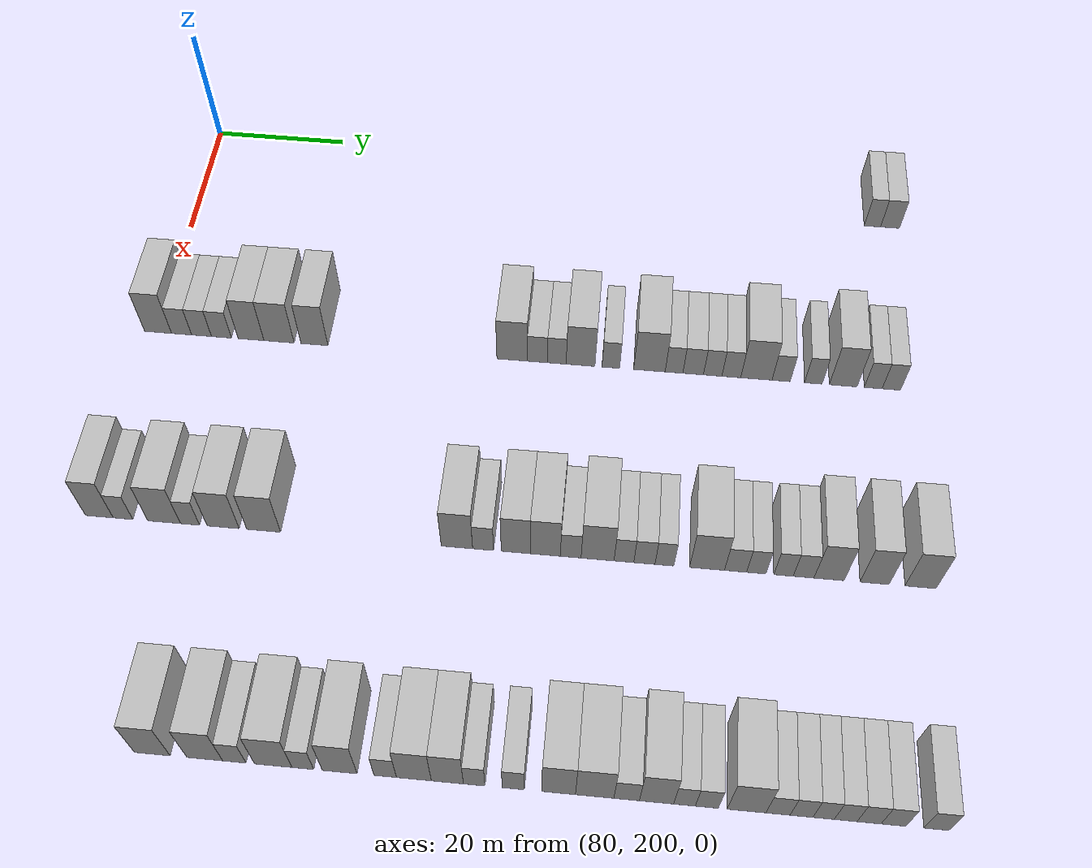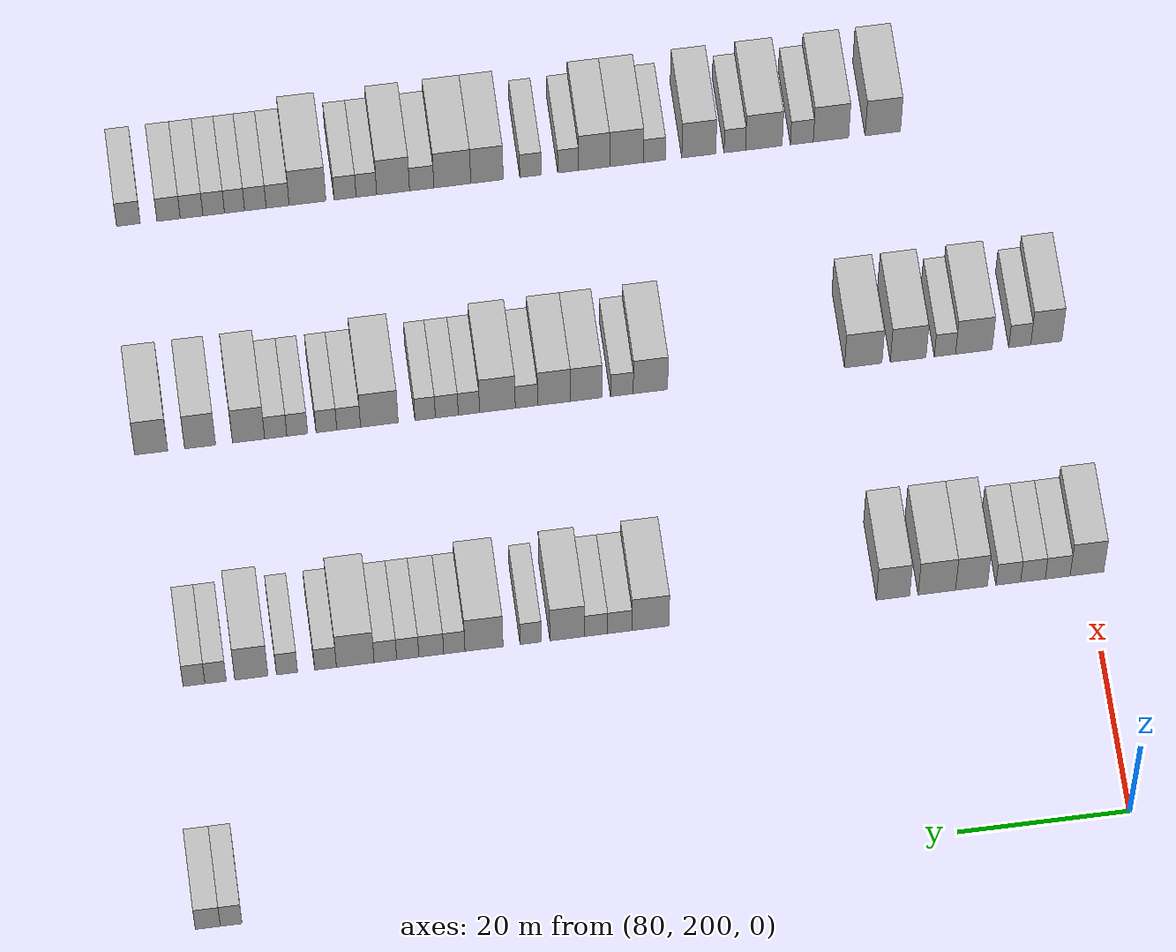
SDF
<sdf version="1.6">
 <world name="default">
  <model name="building_625">
   <static>1</static>
   <pose>85.0000 303.9550 0 0.000000 0.000000 0.000000</pose>
   <link name="link">
    <pose>0 0 3.00 0 0 0</pose>
    <collision name="collision"><geometry><box><size>10.0000 2.4901 6.0000</size></box></geometry></collision>
    <visual name="visual">
     <cast_shadows>0</cast_shadows>
     <geometry><box><size>10.0000 2.4901 6.0000</size></box></geometry>
     <material>
      <script>
       <uri>model://HANNAS_wall/materials/scripts</uri>
       <uri>model://HANNAS_wall/materials/textures</uri>
       <name>vrc/HANNAS_wall</name>
      </script>
     </material>
    </visual>
   </link>
  </model>
  <model name="building_626">
   <static>1</static>
   <pose>85.0000 306.6322 0 0.000000 0.000000 0.000000</pose>
   <link name="link">
    <pose>0 0 3.00 0 0 0</pose>
    <collision name="collision"><geometry><box><size>10.0000 2.8642 6.0000</size></box></geometry></collision>
    <visual name="visual">
     <cast_shadows>0</cast_shadows>
     <geometry><box><size>10.0000 2.8642 6.0000</size></box></geometry>
     <material>
      <script>
       <uri>model://HANNAS_wall/materials/scripts</uri>
       <uri>model://HANNAS_wall/materials/textures</uri>
       <name>vrc/HANNAS_wall</name>
      </script>
     </material>
    </visual>
   </link>
  </model>
  <model name="building_818">
   <static>1</static>
   <pose>115.0000 200.1553 0 0.000000 0.000000 0.000000</pose>
   <link name="link">
    <pose>0 0 4.50 0 0 0</pose>
    <collision name="collision"><geometry><box><size>10.0000 3.9665 9.0000</size></box></geometry></collision>
    <visual name="visual">
     <cast_shadows>0</cast_shadows>
     <geometry><box><size>10.0000 3.9665 9.0000</size></box></geometry>
     <material>
      <script>
       <uri>model://HANNAS_wall/materials/scripts</uri>
       <uri>model://HANNAS_wall/materials/textures</uri>
       <name>vrc/HANNAS_wall</name>
      </script>
     </material>
    </visual>
   </link>
  </model>
  <model name="building_819">
   <static>1</static>
   <pose>115.0000 203.6101 0 0.000000 0.000000 0.000000</pose>
   <link name="link">
    <pose>0 0 3.00 0 0 0</pose>
    <collision name="collision"><geometry><box><size>10.0000 2.9429 6.0000</size></box></geometry></collision>
    <visual name="visual">
     <cast_shadows>0</cast_shadows>
     <geometry><box><size>10.0000 2.9429 6.0000</size></box></geometry>
     <material>
      <script>
       <uri>model://HANNAS_wall/materials/scripts</uri>
       <uri>model://HANNAS_wall/materials/textures</uri>
       <name>vrc/HANNAS_wall</name>
      </script>
     </material>
    </visual>
   </link>
  </model>
  <model name="building_820">
   <static>1</static>
   <pose>115.0000 206.5320 0 0.000000 0.000000 0.000000</pose>
   <link name="link">
    <pose>0 0 3.00 0 0 0</pose>
    <collision name="collision"><geometry><box><size>10.0000 2.9009 6.0000</size></box></geometry></collision>
    <visual name="visual">
     <cast_shadows>0</cast_shadows>
     <geometry><box><size>10.0000 2.9009 6.0000</size></box></geometry>
     <material>
      <script>
       <uri>model://HANNAS_wall/materials/scripts</uri>
       <uri>model://HANNAS_wall/materials/textures</uri>
       <name>vrc/HANNAS_wall</name>
      </script>
     </material>
    </visual>
   </link>
  </model>
  <model name="building_821">
   <static>1</static>
   <pose>115.0000 209.4427 0 0.000000 0.000000 0.000000</pose>
   <link name="link">
    <pose>0 0 3.00 0 0 0</pose>
    <collision name="collision"><geometry><box><size>10.0000 2.9204 6.0000</size></box></geometry></collision>
    <visual name="visual">
     <cast_shadows>0</cast_shadows>
     <geometry><box><size>10.0000 2.9204 6.0000</size></box></geometry>
     <material>
      <script>
       <uri>model://HANNAS_wall/materials/scripts</uri>
       <uri>model://HANNAS_wall/materials/textures</uri>
       <name>vrc/HANNAS_wall</name>
      </script>
     </material>
    </visual>
   </link>
  </model>
  <model name="building_822">
   <static>1</static>
   <pose>115.0000 213.7818 0 0.000000 0.000000 0.000000</pose>
   <link name="link">
    <pose>0 0 4.50 0 0 0</pose>
    <collision name="collision"><geometry><box><size>10.0000 3.7579 9.0000</size></box></geometry></collision>
    <visual name="visual">
     <cast_shadows>0</cast_shadows>
     <geometry><box><size>10.0000 3.7579 9.0000</size></box></geometry>
     <material>
      <script>
       <uri>model://HANNAS_wall/materials/scripts</uri>
       <uri>model://HANNAS_wall/materials/textures</uri>
       <name>vrc/HANNAS_wall</name>
      </script>
     </material>
    </visual>
   </link>
  </model>
  <model name="building_823">
   <static>1</static>
   <pose>115.0000 217.8637 0 0.000000 0.000000 0.000000</pose>
   <link name="link">
    <pose>0 0 4.50 0 0 0</pose>
    <collision name="collision"><geometry><box><size>10.0000 4.4059 9.0000</size></box></geometry></collision>
    <visual name="visual">
     <cast_shadows>0</cast_shadows>
     <geometry><box><size>10.0000 4.4059 9.0000</size></box></geometry>
     <material>
      <script>
       <uri>model://HANNAS_wall/materials/scripts</uri>
       <uri>model://HANNAS_wall/materials/textures</uri>
       <name>vrc/HANNAS_wall</name>
      </script>
     </material>
    </visual>
   </link>
  </model>
  <model name="building_824">
   <static>1</static>
   <pose>115.0000 223.0236 0 0.000000 0.000000 0.000000</pose>
   <link name="link">
    <pose>0 0 4.50 0 0 0</pose>
    <collision name="collision"><geometry><box><size>10.0000 3.9138 9.0000</size></box></geometry></collision>
    <visual name="visual">
     <cast_shadows>0</cast_shadows>
     <geometry><box><size>10.0000 3.9138 9.0000</size></box></geometry>
     <material>
      <script>
       <uri>model://HANNAS_wall/materials/scripts</uri>
       <uri>model://HANNAS_wall/materials/textures</uri>
       <name>vrc/HANNAS_wall</name>
      </script>
     </material>
    </visual>
   </link>
  </model>
  <model name="building_825">
   <static>1</static>
   <pose>115.0000 251.5136 0 0.000000 0.000000 0.000000</pose>
   <link name="link">
    <pose>0 0 4.50 0 0 0</pose>
    <collision name="collision"><geometry><box><size>10.0000 4.3554 9.0000</size></box></geometry></collision>
    <visual name="visual">
     <cast_shadows>0</cast_shadows>
     <geometry><box><size>10.0000 4.3554 9.0000</size></box></geometry>
     <material>
      <script>
       <uri>model://HANNAS_wall/materials/scripts</uri>
       <uri>model://HANNAS_wall/materials/textures</uri>
       <name>vrc/HANNAS_wall</name>
      </script>
     </material>
    </visual>
   </link>
  </model>
  <model name="building_826">
   <static>1</static>
   <pose>115.0000 255.1088 0 0.000000 0.000000 0.000000</pose>
   <link name="link">
    <pose>0 0 3.00 0 0 0</pose>
    <collision name="collision"><geometry><box><size>10.0000 2.8350 6.0000</size></box></geometry></collision>
    <visual name="visual">
     <cast_shadows>0</cast_shadows>
     <geometry><box><size>10.0000 2.8350 6.0000</size></box></geometry>
     <material>
      <script>
       <uri>model://HANNAS_wall/materials/scripts</uri>
       <uri>model://HANNAS_wall/materials/textures</uri>
       <name>vrc/HANNAS_wall</name>
      </script>
     </material>
    </visual>
   </link>
  </model>
  <model name="building_827">
   <static>1</static>
   <pose>115.0000 257.8685 0 0.000000 0.000000 0.000000</pose>
   <link name="link">
    <pose>0 0 3.00 0 0 0</pose>
    <collision name="collision"><geometry><box><size>10.0000 2.6842 6.0000</size></box></geometry></collision>
    <visual name="visual">
     <cast_shadows>0</cast_shadows>
     <geometry><box><size>10.0000 2.6842 6.0000</size></box></geometry>
     <material>
      <script>
       <uri>model://HANNAS_wall/materials/scripts</uri>
       <uri>model://HANNAS_wall/materials/textures</uri>
       <name>vrc/HANNAS_wall</name>
      </script>
     </material>
    </visual>
   </link>
  </model>
  <model name="building_828">
   <static>1</static>
   <pose>115.0000 261.2578 0 0.000000 0.000000 0.000000</pose>
   <link name="link">
    <pose>0 0 4.50 0 0 0</pose>
    <collision name="collision"><geometry><box><size>10.0000 4.0944 9.0000</size></box></geometry></collision>
    <visual name="visual">
     <cast_shadows>0</cast_shadows>
     <geometry><box><size>10.0000 4.0944 9.0000</size></box></geometry>
     <material>
      <script>
       <uri>model://HANNAS_wall/materials/scripts</uri>
       <uri>model://HANNAS_wall/materials/textures</uri>
       <name>vrc/HANNAS_wall</name>
      </script>
     </material>
    </visual>
   </link>
  </model>
  <model name="building_829">
   <static>1</static>
   <pose>115.0000 265.5495 0 0.000000 0.000000 0.000000</pose>
   <link name="link">
    <pose>0 0 3.00 0 0 0</pose>
    <collision name="collision"><geometry><box><size>10.0000 2.4890 6.0000</size></box></geometry></collision>
    <visual name="visual">
     <cast_shadows>0</cast_shadows>
     <geometry><box><size>10.0000 2.4890 6.0000</size></box></geometry>
     <material>
      <script>
       <uri>model://HANNAS_wall/materials/scripts</uri>
       <uri>model://HANNAS_wall/materials/textures</uri>
       <name>vrc/HANNAS_wall</name>
      </script>
     </material>
    </visual>
   </link>
  </model>
  <model name="building_830">
   <static>1</static>
   <pose>115.0000 271.0189 0 0.000000 0.000000 0.000000</pose>
   <link name="link">
    <pose>0 0 4.50 0 0 0</pose>
    <collision name="collision"><geometry><box><size>10.0000 4.4497 9.0000</size></box></geometry></collision>
    <visual name="visual">
     <cast_shadows>0</cast_shadows>
     <geometry><box><size>10.0000 4.4497 9.0000</size></box></geometry>
     <material>
      <script>
       <uri>model://HANNAS_wall/materials/scripts</uri>
       <uri>model://HANNAS_wall/materials/textures</uri>
       <name>vrc/HANNAS_wall</name>
      </script>
     </material>
    </visual>
   </link>
  </model>
  <model name="building_831">
   <static>1</static>
   <pose>115.0000 274.4925 0 0.000000 0.000000 0.000000</pose>
   <link name="link">
    <pose>0 0 3.00 0 0 0</pose>
    <collision name="collision"><geometry><box><size>10.0000 2.4975 6.0000</size></box></geometry></collision>
    <visual name="visual">
     <cast_shadows>0</cast_shadows>
     <geometry><box><size>10.0000 2.4975 6.0000</size></box></geometry>
     <material>
      <script>
       <uri>model://HANNAS_wall/materials/scripts</uri>
       <uri>model://HANNAS_wall/materials/textures</uri>
       <name>vrc/HANNAS_wall</name>
      </script>
     </material>
    </visual>
   </link>
  </model>
  <model name="building_832">
   <static>1</static>
   <pose>115.0000 277.1902 0 0.000000 0.000000 0.000000</pose>
   <link name="link">
    <pose>0 0 3.00 0 0 0</pose>
    <collision name="collision"><geometry><box><size>10.0000 2.8979 6.0000</size></box></geometry></collision>
    <visual name="visual">
     <cast_shadows>0</cast_shadows>
     <geometry><box><size>10.0000 2.8979 6.0000</size></box></geometry>
     <material>
      <script>
       <uri>model://HANNAS_wall/materials/scripts</uri>
       <uri>model://HANNAS_wall/materials/textures</uri>
       <name>vrc/HANNAS_wall</name>
      </script>
     </material>
    </visual>
   </link>
  </model>
  <model name="building_833">
   <static>1</static>
   <pose>115.0000 279.9333 0 0.000000 0.000000 0.000000</pose>
   <link name="link">
    <pose>0 0 3.00 0 0 0</pose>
    <collision name="collision"><geometry><box><size>10.0000 2.5884 6.0000</size></box></geometry></collision>
    <visual name="visual">
     <cast_shadows>0</cast_shadows>
     <geometry><box><size>10.0000 2.5884 6.0000</size></box></geometry>
     <material>
      <script>
       <uri>model://HANNAS_wall/materials/scripts</uri>
       <uri>model://HANNAS_wall/materials/textures</uri>
       <name>vrc/HANNAS_wall</name>
      </script>
     </material>
    </visual>
   </link>
  </model>
  <model name="building_834">
   <static>1</static>
   <pose>115.0000 282.5461 0 0.000000 0.000000 0.000000</pose>
   <link name="link">
    <pose>0 0 3.00 0 0 0</pose>
    <collision name="collision"><geometry><box><size>10.0000 2.6373 6.0000</size></box></geometry></collision>
    <visual name="visual">
     <cast_shadows>0</cast_shadows>
     <geometry><box><size>10.0000 2.6373 6.0000</size></box></geometry>
     <material>
      <script>
       <uri>model://HANNAS_wall/materials/scripts</uri>
       <uri>model://HANNAS_wall/materials/textures</uri>
       <name>vrc/HANNAS_wall</name>
      </script>
     </material>
    </visual>
   </link>
  </model>
  <model name="building_835">
   <static>1</static>
   <pose>115.0000 286.0648 0 0.000000 0.000000 0.000000</pose>
   <link name="link">
    <pose>0 0 4.50 0 0 0</pose>
    <collision name="collision"><geometry><box><size>10.0000 4.4000 9.0000</size></box></geometry></collision>
    <visual name="visual">
     <cast_shadows>0</cast_shadows>
     <geometry><box><size>10.0000 4.4000 9.0000</size></box></geometry>
     <material>
      <script>
       <uri>model://HANNAS_wall/materials/scripts</uri>
       <uri>model://HANNAS_wall/materials/textures</uri>
       <name>vrc/HANNAS_wall</name>
      </script>
     </material>
    </visual>
   </link>
  </model>
  <model name="building_836">
   <static>1</static>
   <pose>115.0000 289.5327 0 0.000000 0.000000 0.000000</pose>
   <link name="link">
    <pose>0 0 3.00 0 0 0</pose>
    <collision name="collision"><geometry><box><size>10.0000 2.5359 6.0000</size></box></geometry></collision>
    <visual name="visual">
     <cast_shadows>0</cast_shadows>
     <geometry><box><size>10.0000 2.5359 6.0000</size></box></geometry>
     <material>
      <script>
       <uri>model://HANNAS_wall/materials/scripts</uri>
       <uri>model://HANNAS_wall/materials/textures</uri>
       <name>vrc/HANNAS_wall</name>
      </script>
     </material>
    </visual>
   </link>
  </model>
  <model name="building_837">
   <static>1</static>
   <pose>115.0000 294.0293 0 0.000000 0.000000 0.000000</pose>
   <link name="link">
    <pose>0 0 3.00 0 0 0</pose>
    <collision name="collision"><geometry><box><size>10.0000 2.4572 6.0000</size></box></geometry></collision>
    <visual name="visual">
     <cast_shadows>0</cast_shadows>
     <geometry><box><size>10.0000 2.4572 6.0000</size></box></geometry>
     <material>
      <script>
       <uri>model://HANNAS_wall/materials/scripts</uri>
       <uri>model://HANNAS_wall/materials/textures</uri>
       <name>vrc/HANNAS_wall</name>
      </script>
     </material>
    </visual>
   </link>
  </model>
  <model name="building_838">
   <static>1</static>
   <pose>115.0000 298.1896 0 0.000000 0.000000 0.000000</pose>
   <link name="link">
    <pose>0 0 4.50 0 0 0</pose>
    <collision name="collision"><geometry><box><size>10.0000 3.8634 9.0000</size></box></geometry></collision>
    <visual name="visual">
     <cast_shadows>0</cast_shadows>
     <geometry><box><size>10.0000 3.8634 9.0000</size></box></geometry>
     <material>
      <script>
       <uri>model://HANNAS_wall/materials/scripts</uri>
       <uri>model://HANNAS_wall/materials/textures</uri>
       <name>vrc/HANNAS_wall</name>
      </script>
     </material>
    </visual>
   </link>
  </model>
  <model name="building_839">
   <static>1</static>
   <pose>115.0000 302.3589 0 0.000000 0.000000 0.000000</pose>
   <link name="link">
    <pose>0 0 3.00 0 0 0</pose>
    <collision name="collision"><geometry><box><size>10.0000 2.4753 6.0000</size></box></geometry></collision>
    <visual name="visual">
     <cast_shadows>0</cast_shadows>
     <geometry><box><size>10.0000 2.4753 6.0000</size></box></geometry>
     <material>
      <script>
       <uri>model://HANNAS_wall/materials/scripts</uri>
       <uri>model://HANNAS_wall/materials/textures</uri>
       <name>vrc/HANNAS_wall</name>
      </script>
     </material>
    </visual>
   </link>
  </model>
  <model name="building_840">
   <static>1</static>
   <pose>115.0000 304.8739 0 0.000000 0.000000 0.000000</pose>
   <link name="link">
    <pose>0 0 3.00 0 0 0</pose>
    <collision name="collision"><geometry><box><size>10.0000 2.5545 6.0000</size></box></geometry></collision>
    <visual name="visual">
     <cast_shadows>0</cast_shadows>
     <geometry><box><size>10.0000 2.5545 6.0000</size></box></geometry>
     <material>
      <script>
       <uri>model://HANNAS_wall/materials/scripts</uri>
       <uri>model://HANNAS_wall/materials/textures</uri>
       <name>vrc/HANNAS_wall</name>
      </script>
     </material>
    </visual>
   </link>
  </model>
  <model name="building_1040">
   <static>1</static>
   <pose>145.0000 200.1491 0 0.000000 0.000000 0.000000</pose>
   <link name="link">
    <pose>0 0 4.50 0 0 0</pose>
    <collision name="collision"><geometry><box><size>10.0000 3.7177 9.0000</size></box></geometry></collision>
    <visual name="visual">
     <cast_shadows>0</cast_shadows>
     <geometry><box><size>10.0000 3.7177 9.0000</size></box></geometry>
     <material>
      <script>
       <uri>model://HANNAS_wall/materials/scripts</uri>
       <uri>model://HANNAS_wall/materials/textures</uri>
       <name>vrc/HANNAS_wall</name>
      </script>
     </material>
    </visual>
   </link>
  </model>
  <model name="building_1041">
   <static>1</static>
   <pose>145.0000 203.3205 0 0.000000 0.000000 0.000000</pose>
   <link name="link">
    <pose>0 0 3.00 0 0 0</pose>
    <collision name="collision"><geometry><box><size>10.0000 2.6252 6.0000</size></box></geometry></collision>
    <visual name="visual">
     <cast_shadows>0</cast_shadows>
     <geometry><box><size>10.0000 2.6252 6.0000</size></box></geometry>
     <material>
      <script>
       <uri>model://HANNAS_wall/materials/scripts</uri>
       <uri>model://HANNAS_wall/materials/textures</uri>
       <name>vrc/HANNAS_wall</name>
      </script>
     </material>
    </visual>
   </link>
  </model>
  <model name="building_1042">
   <static>1</static>
   <pose>145.0000 208.8163 0 0.000000 0.000000 0.000000</pose>
   <link name="link">
    <pose>0 0 4.50 0 0 0</pose>
    <collision name="collision"><geometry><box><size>10.0000 4.3663 9.0000</size></box></geometry></collision>
    <visual name="visual">
     <cast_shadows>0</cast_shadows>
     <geometry><box><size>10.0000 4.3663 9.0000</size></box></geometry>
     <material>
      <script>
       <uri>model://HANNAS_wall/materials/scripts</uri>
       <uri>model://HANNAS_wall/materials/textures</uri>
       <name>vrc/HANNAS_wall</name>
      </script>
     </material>
    </visual>
   </link>
  </model>
  <model name="building_1043">
   <static>1</static>
   <pose>145.0000 212.2691 0 0.000000 0.000000 0.000000</pose>
   <link name="link">
    <pose>0 0 3.00 0 0 0</pose>
    <collision name="collision"><geometry><box><size>10.0000 2.5394 6.0000</size></box></geometry></collision>
    <visual name="visual">
     <cast_shadows>0</cast_shadows>
     <geometry><box><size>10.0000 2.5394 6.0000</size></box></geometry>
     <material>
      <script>
       <uri>model://HANNAS_wall/materials/scripts</uri>
       <uri>model://HANNAS_wall/materials/textures</uri>
       <name>vrc/HANNAS_wall</name>
      </script>
     </material>
    </visual>
   </link>
  </model>
  <model name="building_1044">
   <static>1</static>
   <pose>145.0000 216.6692 0 0.000000 0.000000 0.000000</pose>
   <link name="link">
    <pose>0 0 4.50 0 0 0</pose>
    <collision name="collision"><geometry><box><size>10.0000 4.2607 9.0000</size></box></geometry></collision>
    <visual name="visual">
     <cast_shadows>0</cast_shadows>
     <geometry><box><size>10.0000 4.2607 9.0000</size></box></geometry>
     <material>
      <script>
       <uri>model://HANNAS_wall/materials/scripts</uri>
       <uri>model://HANNAS_wall/materials/textures</uri>
       <name>vrc/HANNAS_wall</name>
      </script>
     </material>
    </visual>
   </link>
  </model>
  <model name="building_1045">
   <static>1</static>
   <pose>145.0000 222.0366 0 0.000000 0.000000 0.000000</pose>
   <link name="link">
    <pose>0 0 4.50 0 0 0</pose>
    <collision name="collision"><geometry><box><size>10.0000 4.4741 9.0000</size></box></geometry></collision>
    <visual name="visual">
     <cast_shadows>0</cast_shadows>
     <geometry><box><size>10.0000 4.4741 9.0000</size></box></geometry>
     <material>
      <script>
       <uri>model://HANNAS_wall/materials/scripts</uri>
       <uri>model://HANNAS_wall/materials/textures</uri>
       <name>vrc/HANNAS_wall</name>
      </script>
     </material>
    </visual>
   </link>
  </model>
  <model name="building_1046">
   <static>1</static>
   <pose>145.0000 247.3948 0 0.000000 0.000000 0.000000</pose>
   <link name="link">
    <pose>0 0 4.50 0 0 0</pose>
    <collision name="collision"><geometry><box><size>10.0000 4.0808 9.0000</size></box></geometry></collision>
    <visual name="visual">
     <cast_shadows>0</cast_shadows>
     <geometry><box><size>10.0000 4.0808 9.0000</size></box></geometry>
     <material>
      <script>
       <uri>model://HANNAS_wall/materials/scripts</uri>
       <uri>model://HANNAS_wall/materials/textures</uri>
       <name>vrc/HANNAS_wall</name>
      </script>
     </material>
    </visual>
   </link>
  </model>
  <model name="building_1047">
   <static>1</static>
   <pose>145.0000 250.7909 0 0.000000 0.000000 0.000000</pose>
   <link name="link">
    <pose>0 0 3.00 0 0 0</pose>
    <collision name="collision"><geometry><box><size>10.0000 2.7113 6.0000</size></box></geometry></collision>
    <visual name="visual">
     <cast_shadows>0</cast_shadows>
     <geometry><box><size>10.0000 2.7113 6.0000</size></box></geometry>
     <material>
      <script>
       <uri>model://HANNAS_wall/materials/scripts</uri>
       <uri>model://HANNAS_wall/materials/textures</uri>
       <name>vrc/HANNAS_wall</name>
      </script>
     </material>
    </visual>
   </link>
  </model>
  <model name="building_1048">
   <static>1</static>
   <pose>145.0000 255.0170 0 0.000000 0.000000 0.000000</pose>
   <link name="link">
    <pose>0 0 4.50 0 0 0</pose>
    <collision name="collision"><geometry><box><size>10.0000 3.7409 9.0000</size></box></geometry></collision>
    <visual name="visual">
     <cast_shadows>0</cast_shadows>
     <geometry><box><size>10.0000 3.7409 9.0000</size></box></geometry>
     <material>
      <script>
       <uri>model://HANNAS_wall/materials/scripts</uri>
       <uri>model://HANNAS_wall/materials/textures</uri>
       <name>vrc/HANNAS_wall</name>
      </script>
     </material>
    </visual>
   </link>
  </model>
  <model name="building_1049">
   <static>1</static>
   <pose>145.0000 258.8384 0 0.000000 0.000000 0.000000</pose>
   <link name="link">
    <pose>0 0 4.50 0 0 0</pose>
    <collision name="collision"><geometry><box><size>10.0000 3.9018 9.0000</size></box></geometry></collision>
    <visual name="visual">
     <cast_shadows>0</cast_shadows>
     <geometry><box><size>10.0000 3.9018 9.0000</size></box></geometry>
     <material>
      <script>
       <uri>model://HANNAS_wall/materials/scripts</uri>
       <uri>model://HANNAS_wall/materials/textures</uri>
       <name>vrc/HANNAS_wall</name>
      </script>
     </material>
    </visual>
   </link>
  </model>
  <model name="building_1050">
   <static>1</static>
   <pose>145.0000 262.1228 0 0.000000 0.000000 0.000000</pose>
   <link name="link">
    <pose>0 0 3.00 0 0 0</pose>
    <collision name="collision"><geometry><box><size>10.0000 2.6670 6.0000</size></box></geometry></collision>
    <visual name="visual">
     <cast_shadows>0</cast_shadows>
     <geometry><box><size>10.0000 2.6670 6.0000</size></box></geometry>
     <material>
      <script>
       <uri>model://HANNAS_wall/materials/scripts</uri>
       <uri>model://HANNAS_wall/materials/textures</uri>
       <name>vrc/HANNAS_wall</name>
      </script>
     </material>
    </visual>
   </link>
  </model>
  <model name="building_1051">
   <static>1</static>
   <pose>145.0000 265.5800 0 0.000000 0.000000 0.000000</pose>
   <link name="link">
    <pose>0 0 4.50 0 0 0</pose>
    <collision name="collision"><geometry><box><size>10.0000 4.2476 9.0000</size></box></geometry></collision>
    <visual name="visual">
     <cast_shadows>0</cast_shadows>
     <geometry><box><size>10.0000 4.2476 9.0000</size></box></geometry>
     <material>
      <script>
       <uri>model://HANNAS_wall/materials/scripts</uri>
       <uri>model://HANNAS_wall/materials/textures</uri>
       <name>vrc/HANNAS_wall</name>
      </script>
     </material>
    </visual>
   </link>
  </model>
  <model name="building_1052">
   <static>1</static>
   <pose>145.0000 268.9675 0 0.000000 0.000000 0.000000</pose>
   <link name="link">
    <pose>0 0 3.00 0 0 0</pose>
    <collision name="collision"><geometry><box><size>10.0000 2.5274 6.0000</size></box></geometry></collision>
    <visual name="visual">
     <cast_shadows>0</cast_shadows>
     <geometry><box><size>10.0000 2.5274 6.0000</size></box></geometry>
     <material>
      <script>
       <uri>model://HANNAS_wall/materials/scripts</uri>
       <uri>model://HANNAS_wall/materials/textures</uri>
       <name>vrc/HANNAS_wall</name>
      </script>
     </material>
    </visual>
   </link>
  </model>
  <model name="building_1053">
   <static>1</static>
   <pose>145.0000 271.5907 0 0.000000 0.000000 0.000000</pose>
   <link name="link">
    <pose>0 0 3.00 0 0 0</pose>
    <collision name="collision"><geometry><box><size>10.0000 2.7189 6.0000</size></box></geometry></collision>
    <visual name="visual">
     <cast_shadows>0</cast_shadows>
     <geometry><box><size>10.0000 2.7189 6.0000</size></box></geometry>
     <material>
      <script>
       <uri>model://HANNAS_wall/materials/scripts</uri>
       <uri>model://HANNAS_wall/materials/textures</uri>
       <name>vrc/HANNAS_wall</name>
      </script>
     </material>
    </visual>
   </link>
  </model>
  <model name="building_1054">
   <static>1</static>
   <pose>145.0000 274.1569 0 0.000000 0.000000 0.000000</pose>
   <link name="link">
    <pose>0 0 3.00 0 0 0</pose>
    <collision name="collision"><geometry><box><size>10.0000 2.4135 6.0000</size></box></geometry></collision>
    <visual name="visual">
     <cast_shadows>0</cast_shadows>
     <geometry><box><size>10.0000 2.4135 6.0000</size></box></geometry>
     <material>
      <script>
       <uri>model://HANNAS_wall/materials/scripts</uri>
       <uri>model://HANNAS_wall/materials/textures</uri>
       <name>vrc/HANNAS_wall</name>
      </script>
     </material>
    </visual>
   </link>
  </model>
  <model name="building_1055">
   <static>1</static>
   <pose>145.0000 279.5948 0 0.000000 0.000000 0.000000</pose>
   <link name="link">
    <pose>0 0 4.50 0 0 0</pose>
    <collision name="collision"><geometry><box><size>10.0000 4.4623 9.0000</size></box></geometry></collision>
    <visual name="visual">
     <cast_shadows>0</cast_shadows>
     <geometry><box><size>10.0000 4.4623 9.0000</size></box></geometry>
     <material>
      <script>
       <uri>model://HANNAS_wall/materials/scripts</uri>
       <uri>model://HANNAS_wall/materials/textures</uri>
       <name>vrc/HANNAS_wall</name>
      </script>
     </material>
    </visual>
   </link>
  </model>
  <model name="building_1056">
   <static>1</static>
   <pose>145.0000 283.2321 0 0.000000 0.000000 0.000000</pose>
   <link name="link">
    <pose>0 0 3.00 0 0 0</pose>
    <collision name="collision"><geometry><box><size>10.0000 2.8125 6.0000</size></box></geometry></collision>
    <visual name="visual">
     <cast_shadows>0</cast_shadows>
     <geometry><box><size>10.0000 2.8125 6.0000</size></box></geometry>
     <material>
      <script>
       <uri>model://HANNAS_wall/materials/scripts</uri>
       <uri>model://HANNAS_wall/materials/textures</uri>
       <name>vrc/HANNAS_wall</name>
      </script>
     </material>
    </visual>
   </link>
  </model>
  <model name="building_1057">
   <static>1</static>
   <pose>145.0000 285.8617 0 0.000000 0.000000 0.000000</pose>
   <link name="link">
    <pose>0 0 3.00 0 0 0</pose>
    <collision name="collision"><geometry><box><size>10.0000 2.4466 6.0000</size></box></geometry></collision>
    <visual name="visual">
     <cast_shadows>0</cast_shadows>
     <geometry><box><size>10.0000 2.4466 6.0000</size></box></geometry>
     <material>
      <script>
       <uri>model://HANNAS_wall/materials/scripts</uri>
       <uri>model://HANNAS_wall/materials/textures</uri>
       <name>vrc/HANNAS_wall</name>
      </script>
     </material>
    </visual>
   </link>
  </model>
  <model name="building_1058">
   <static>1</static>
   <pose>145.0000 289.3159 0 0.000000 0.000000 0.000000</pose>
   <link name="link">
    <pose>0 0 3.00 0 0 0</pose>
    <collision name="collision"><geometry><box><size>10.0000 2.4618 6.0000</size></box></geometry></collision>
    <visual name="visual">
     <cast_shadows>0</cast_shadows>
     <geometry><box><size>10.0000 2.4618 6.0000</size></box></geometry>
     <material>
      <script>
       <uri>model://HANNAS_wall/materials/scripts</uri>
       <uri>model://HANNAS_wall/materials/textures</uri>
       <name>vrc/HANNAS_wall</name>
      </script>
     </material>
    </visual>
   </link>
  </model>
  <model name="building_1059">
   <static>1</static>
   <pose>145.0000 291.8589 0 0.000000 0.000000 0.000000</pose>
   <link name="link">
    <pose>0 0 3.00 0 0 0</pose>
    <collision name="collision"><geometry><box><size>10.0000 2.6242 6.0000</size></box></geometry></collision>
    <visual name="visual">
     <cast_shadows>0</cast_shadows>
     <geometry><box><size>10.0000 2.6242 6.0000</size></box></geometry>
     <material>
      <script>
       <uri>model://HANNAS_wall/materials/scripts</uri>
       <uri>model://HANNAS_wall/materials/textures</uri>
       <name>vrc/HANNAS_wall</name>
      </script>
     </material>
    </visual>
   </link>
  </model>
  <model name="building_1060">
   <static>1</static>
   <pose>145.0000 295.0736 0 0.000000 0.000000 0.000000</pose>
   <link name="link">
    <pose>0 0 4.50 0 0 0</pose>
    <collision name="collision"><geometry><box><size>10.0000 3.8051 9.0000</size></box></geometry></collision>
    <visual name="visual">
     <cast_shadows>0</cast_shadows>
     <geometry><box><size>10.0000 3.8051 9.0000</size></box></geometry>
     <material>
      <script>
       <uri>model://HANNAS_wall/materials/scripts</uri>
       <uri>model://HANNAS_wall/materials/textures</uri>
       <name>vrc/HANNAS_wall</name>
      </script>
     </material>
    </visual>
   </link>
  </model>
  <model name="building_1061">
   <static>1</static>
   <pose>145.0000 300.8052 0 0.000000 0.000000 0.000000</pose>
   <link name="link">
    <pose>0 0 4.50 0 0 0</pose>
    <collision name="collision"><geometry><box><size>10.0000 3.6581 9.0000</size></box></geometry></collision>
    <visual name="visual">
     <cast_shadows>0</cast_shadows>
     <geometry><box><size>10.0000 3.6581 9.0000</size></box></geometry>
     <material>
      <script>
       <uri>model://HANNAS_wall/materials/scripts</uri>
       <uri>model://HANNAS_wall/materials/textures</uri>
       <name>vrc/HANNAS_wall</name>
      </script>
     </material>
    </visual>
   </link>
  </model>
  <model name="building_1062">
   <static>1</static>
   <pose>145.0000 306.5866 0 0.000000 0.000000 0.000000</pose>
   <link name="link">
    <pose>0 0 4.50 0 0 0</pose>
    <collision name="collision"><geometry><box><size>10.0000 3.9048 9.0000</size></box></geometry></collision>
    <visual name="visual">
     <cast_shadows>0</cast_shadows>
     <geometry><box><size>10.0000 3.9048 9.0000</size></box></geometry>
     <material>
      <script>
       <uri>model://HANNAS_wall/materials/scripts</uri>
       <uri>model://HANNAS_wall/materials/textures</uri>
       <name>vrc/HANNAS_wall</name>
      </script>
     </material>
    </visual>
   </link>
  </model>
  <model name="building_1266">
   <static>1</static>
   <pose>175.0000 215.1739 0 0.000000 0.000000 0.000000</pose>
   <link name="link">
    <pose>0 0 4.50 0 0 0</pose>
    <collision name="collision"><geometry><box><size>10.0000 4.2709 9.0000</size></box></geometry></collision>
    <visual name="visual">
     <cast_shadows>0</cast_shadows>
     <geometry><box><size>10.0000 4.2709 9.0000</size></box></geometry>
     <material>
      <script>
       <uri>model://HANNAS_wall/materials/scripts</uri>
       <uri>model://HANNAS_wall/materials/textures</uri>
       <name>vrc/HANNAS_wall</name>
      </script>
     </material>
    </visual>
   </link>
  </model>
  <model name="building_1267">
   <static>1</static>
   <pose>175.0000 221.4461 0 0.000000 0.000000 0.000000</pose>
   <link name="link">
    <pose>0 0 4.50 0 0 0</pose>
    <collision name="collision"><geometry><box><size>10.0000 4.2737 9.0000</size></box></geometry></collision>
    <visual name="visual">
     <cast_shadows>0</cast_shadows>
     <geometry><box><size>10.0000 4.2737 9.0000</size></box></geometry>
     <material>
      <script>
       <uri>model://HANNAS_wall/materials/scripts</uri>
       <uri>model://HANNAS_wall/materials/textures</uri>
       <name>vrc/HANNAS_wall</name>
      </script>
     </material>
    </visual>
   </link>
  </model>
  <model name="building_1268">
   <static>1</static>
   <pose>175.0000 224.9697 0 0.000000 0.000000 0.000000</pose>
   <link name="link">
    <pose>0 0 3.00 0 0 0</pose>
    <collision name="collision"><geometry><box><size>10.0000 2.7734 6.0000</size></box></geometry></collision>
    <visual name="visual">
     <cast_shadows>0</cast_shadows>
     <geometry><box><size>10.0000 2.7734 6.0000</size></box></geometry>
     <material>
      <script>
       <uri>model://HANNAS_wall/materials/scripts</uri>
       <uri>model://HANNAS_wall/materials/textures</uri>
       <name>vrc/HANNAS_wall</name>
      </script>
     </material>
    </visual>
   </link>
  </model>
  <model name="building_1269">
   <static>1</static>
   <pose>175.0000 229.5729 0 0.000000 0.000000 0.000000</pose>
   <link name="link">
    <pose>0 0 4.50 0 0 0</pose>
    <collision name="collision"><geometry><box><size>10.0000 4.4330 9.0000</size></box></geometry></collision>
    <visual name="visual">
     <cast_shadows>0</cast_shadows>
     <geometry><box><size>10.0000 4.4330 9.0000</size></box></geometry>
     <material>
      <script>
       <uri>model://HANNAS_wall/materials/scripts</uri>
       <uri>model://HANNAS_wall/materials/textures</uri>
       <name>vrc/HANNAS_wall</name>
      </script>
     </material>
    </visual>
   </link>
  </model>
  <model name="building_1270">
   <static>1</static>
   <pose>175.0000 233.0828 0 0.000000 0.000000 0.000000</pose>
   <link name="link">
    <pose>0 0 3.00 0 0 0</pose>
    <collision name="collision"><geometry><box><size>10.0000 2.5869 6.0000</size></box></geometry></collision>
    <visual name="visual">
     <cast_shadows>0</cast_shadows>
     <geometry><box><size>10.0000 2.5869 6.0000</size></box></geometry>
     <material>
      <script>
       <uri>model://HANNAS_wall/materials/scripts</uri>
       <uri>model://HANNAS_wall/materials/textures</uri>
       <name>vrc/HANNAS_wall</name>
      </script>
     </material>
    </visual>
   </link>
  </model>
  <model name="building_1271">
   <static>1</static>
   <pose>175.0000 237.4285 0 0.000000 0.000000 0.000000</pose>
   <link name="link">
    <pose>0 0 4.50 0 0 0</pose>
    <collision name="collision"><geometry><box><size>10.0000 4.1044 9.0000</size></box></geometry></collision>
    <visual name="visual">
     <cast_shadows>0</cast_shadows>
     <geometry><box><size>10.0000 4.1044 9.0000</size></box></geometry>
     <material>
      <script>
       <uri>model://HANNAS_wall/materials/scripts</uri>
       <uri>model://HANNAS_wall/materials/textures</uri>
       <name>vrc/HANNAS_wall</name>
      </script>
     </material>
    </visual>
   </link>
  </model>
  <model name="building_1272">
   <static>1</static>
   <pose>175.0000 242.7928 0 0.000000 0.000000 0.000000</pose>
   <link name="link">
    <pose>0 0 3.00 0 0 0</pose>
    <collision name="collision"><geometry><box><size>10.0000 2.6243 6.0000</size></box></geometry></collision>
    <visual name="visual">
     <cast_shadows>0</cast_shadows>
     <geometry><box><size>10.0000 2.6243 6.0000</size></box></geometry>
     <material>
      <script>
       <uri>model://HANNAS_wall/materials/scripts</uri>
       <uri>model://HANNAS_wall/materials/textures</uri>
       <name>vrc/HANNAS_wall</name>
      </script>
     </material>
    </visual>
   </link>
  </model>
  <model name="building_1273">
   <static>1</static>
   <pose>175.0000 246.1471 0 0.000000 0.000000 0.000000</pose>
   <link name="link">
    <pose>0 0 4.50 0 0 0</pose>
    <collision name="collision"><geometry><box><size>10.0000 4.0843 9.0000</size></box></geometry></collision>
    <visual name="visual">
     <cast_shadows>0</cast_shadows>
     <geometry><box><size>10.0000 4.0843 9.0000</size></box></geometry>
     <material>
      <script>
       <uri>model://HANNAS_wall/materials/scripts</uri>
       <uri>model://HANNAS_wall/materials/textures</uri>
       <name>vrc/HANNAS_wall</name>
      </script>
     </material>
    </visual>
   </link>
  </model>
  <model name="building_1274">
   <static>1</static>
   <pose>175.0000 250.0673 0 0.000000 0.000000 0.000000</pose>
   <link name="link">
    <pose>0 0 4.50 0 0 0</pose>
    <collision name="collision"><geometry><box><size>10.0000 3.7562 9.0000</size></box></geometry></collision>
    <visual name="visual">
     <cast_shadows>0</cast_shadows>
     <geometry><box><size>10.0000 3.7562 9.0000</size></box></geometry>
     <material>
      <script>
       <uri>model://HANNAS_wall/materials/scripts</uri>
       <uri>model://HANNAS_wall/materials/textures</uri>
       <name>vrc/HANNAS_wall</name>
      </script>
     </material>
    </visual>
   </link>
  </model>
  <model name="building_1275">
   <static>1</static>
   <pose>175.0000 253.1959 0 0.000000 0.000000 0.000000</pose>
   <link name="link">
    <pose>0 0 3.00 0 0 0</pose>
    <collision name="collision"><geometry><box><size>10.0000 2.5011 6.0000</size></box></geometry></collision>
    <visual name="visual">
     <cast_shadows>0</cast_shadows>
     <geometry><box><size>10.0000 2.5011 6.0000</size></box></geometry>
     <material>
      <script>
       <uri>model://HANNAS_wall/materials/scripts</uri>
       <uri>model://HANNAS_wall/materials/textures</uri>
       <name>vrc/HANNAS_wall</name>
      </script>
     </material>
    </visual>
   </link>
  </model>
  <model name="building_1276">
   <static>1</static>
   <pose>175.0000 257.7343 0 0.000000 0.000000 0.000000</pose>
   <link name="link">
    <pose>0 0 3.00 0 0 0</pose>
    <collision name="collision"><geometry><box><size>10.0000 2.5757 6.0000</size></box></geometry></collision>
    <visual name="visual">
     <cast_shadows>0</cast_shadows>
     <geometry><box><size>10.0000 2.5757 6.0000</size></box></geometry>
     <material>
      <script>
       <uri>model://HANNAS_wall/materials/scripts</uri>
       <uri>model://HANNAS_wall/materials/textures</uri>
       <name>vrc/HANNAS_wall</name>
      </script>
     </material>
    </visual>
   </link>
  </model>
  <model name="building_1277">
   <static>1</static>
   <pose>175.0000 262.9759 0 0.000000 0.000000 0.000000</pose>
   <link name="link">
    <pose>0 0 4.50 0 0 0</pose>
    <collision name="collision"><geometry><box><size>10.0000 3.9076 9.0000</size></box></geometry></collision>
    <visual name="visual">
     <cast_shadows>0</cast_shadows>
     <geometry><box><size>10.0000 3.9076 9.0000</size></box></geometry>
     <material>
      <script>
       <uri>model://HANNAS_wall/materials/scripts</uri>
       <uri>model://HANNAS_wall/materials/textures</uri>
       <name>vrc/HANNAS_wall</name>
      </script>
     </material>
    </visual>
   </link>
  </model>
  <model name="building_1278">
   <static>1</static>
   <pose>175.0000 267.1484 0 0.000000 0.000000 0.000000</pose>
   <link name="link">
    <pose>0 0 4.50 0 0 0</pose>
    <collision name="collision"><geometry><box><size>10.0000 4.4374 9.0000</size></box></geometry></collision>
    <visual name="visual">
     <cast_shadows>0</cast_shadows>
     <geometry><box><size>10.0000 4.4374 9.0000</size></box></geometry>
     <material>
      <script>
       <uri>model://HANNAS_wall/materials/scripts</uri>
       <uri>model://HANNAS_wall/materials/textures</uri>
       <name>vrc/HANNAS_wall</name>
      </script>
     </material>
    </visual>
   </link>
  </model>
  <model name="building_1279">
   <static>1</static>
   <pose>175.0000 270.8330 0 0.000000 0.000000 0.000000</pose>
   <link name="link">
    <pose>0 0 3.00 0 0 0</pose>
    <collision name="collision"><geometry><box><size>10.0000 2.9316 6.0000</size></box></geometry></collision>
    <visual name="visual">
     <cast_shadows>0</cast_shadows>
     <geometry><box><size>10.0000 2.9316 6.0000</size></box></geometry>
     <material>
      <script>
       <uri>model://HANNAS_wall/materials/scripts</uri>
       <uri>model://HANNAS_wall/materials/textures</uri>
       <name>vrc/HANNAS_wall</name>
      </script>
     </material>
    </visual>
   </link>
  </model>
  <model name="building_1280">
   <static>1</static>
   <pose>175.0000 274.2717 0 0.000000 0.000000 0.000000</pose>
   <link name="link">
    <pose>0 0 4.50 0 0 0</pose>
    <collision name="collision"><geometry><box><size>10.0000 3.9460 9.0000</size></box></geometry></collision>
    <visual name="visual">
     <cast_shadows>0</cast_shadows>
     <geometry><box><size>10.0000 3.9460 9.0000</size></box></geometry>
     <material>
      <script>
       <uri>model://HANNAS_wall/materials/scripts</uri>
       <uri>model://HANNAS_wall/materials/textures</uri>
       <name>vrc/HANNAS_wall</name>
      </script>
     </material>
    </visual>
   </link>
  </model>
  <model name="building_1281">
   <static>1</static>
   <pose>175.0000 277.4832 0 0.000000 0.000000 0.000000</pose>
   <link name="link">
    <pose>0 0 3.00 0 0 0</pose>
    <collision name="collision"><geometry><box><size>10.0000 2.4769 6.0000</size></box></geometry></collision>
    <visual name="visual">
     <cast_shadows>0</cast_shadows>
     <geometry><box><size>10.0000 2.4769 6.0000</size></box></geometry>
     <material>
      <script>
       <uri>model://HANNAS_wall/materials/scripts</uri>
       <uri>model://HANNAS_wall/materials/textures</uri>
       <name>vrc/HANNAS_wall</name>
      </script>
     </material>
    </visual>
   </link>
  </model>
  <model name="building_1282">
   <static>1</static>
   <pose>175.0000 280.0384 0 0.000000 0.000000 0.000000</pose>
   <link name="link">
    <pose>0 0 3.00 0 0 0</pose>
    <collision name="collision"><geometry><box><size>10.0000 2.6334 6.0000</size></box></geometry></collision>
    <visual name="visual">
     <cast_shadows>0</cast_shadows>
     <geometry><box><size>10.0000 2.6334 6.0000</size></box></geometry>
     <material>
      <script>
       <uri>model://HANNAS_wall/materials/scripts</uri>
       <uri>model://HANNAS_wall/materials/textures</uri>
       <name>vrc/HANNAS_wall</name>
      </script>
     </material>
    </visual>
   </link>
  </model>
  <model name="building_1283">
   <static>1</static>
   <pose>175.0000 284.5623 0 0.000000 0.000000 0.000000</pose>
   <link name="link">
    <pose>0 0 4.50 0 0 0</pose>
    <collision name="collision"><geometry><box><size>10.0000 4.4145 9.0000</size></box></geometry></collision>
    <visual name="visual">
     <cast_shadows>0</cast_shadows>
     <geometry><box><size>10.0000 4.4145 9.0000</size></box></geometry>
     <material>
      <script>
       <uri>model://HANNAS_wall/materials/scripts</uri>
       <uri>model://HANNAS_wall/materials/textures</uri>
       <name>vrc/HANNAS_wall</name>
      </script>
     </material>
    </visual>
   </link>
  </model>
  <model name="building_1284">
   <static>1</static>
   <pose>175.0000 288.1468 0 0.000000 0.000000 0.000000</pose>
   <link name="link">
    <pose>0 0 3.00 0 0 0</pose>
    <collision name="collision"><geometry><box><size>10.0000 2.7545 6.0000</size></box></geometry></collision>
    <visual name="visual">
     <cast_shadows>0</cast_shadows>
     <geometry><box><size>10.0000 2.7545 6.0000</size></box></geometry>
     <material>
      <script>
       <uri>model://HANNAS_wall/materials/scripts</uri>
       <uri>model://HANNAS_wall/materials/textures</uri>
       <name>vrc/HANNAS_wall</name>
      </script>
     </material>
    </visual>
   </link>
  </model>
  <model name="building_1285">
   <static>1</static>
   <pose>175.0000 290.8157 0 0.000000 0.000000 0.000000</pose>
   <link name="link">
    <pose>0 0 3.00 0 0 0</pose>
    <collision name="collision"><geometry><box><size>10.0000 2.5834 6.0000</size></box></geometry></collision>
    <visual name="visual">
     <cast_shadows>0</cast_shadows>
     <geometry><box><size>10.0000 2.5834 6.0000</size></box></geometry>
     <material>
      <script>
       <uri>model://HANNAS_wall/materials/scripts</uri>
       <uri>model://HANNAS_wall/materials/textures</uri>
       <name>vrc/HANNAS_wall</name>
      </script>
     </material>
    </visual>
   </link>
  </model>
  <model name="building_1286">
   <static>1</static>
   <pose>175.0000 293.3132 0 0.000000 0.000000 0.000000</pose>
   <link name="link">
    <pose>0 0 3.00 0 0 0</pose>
    <collision name="collision"><geometry><box><size>10.0000 2.4115 6.0000</size></box></geometry></collision>
    <visual name="visual">
     <cast_shadows>0</cast_shadows>
     <geometry><box><size>10.0000 2.4115 6.0000</size></box></geometry>
     <material>
      <script>
       <uri>model://HANNAS_wall/materials/scripts</uri>
       <uri>model://HANNAS_wall/materials/textures</uri>
       <name>vrc/HANNAS_wall</name>
      </script>
     </material>
    </visual>
   </link>
  </model>
  <model name="building_1287">
   <static>1</static>
   <pose>175.0000 295.8135 0 0.000000 0.000000 0.000000</pose>
   <link name="link">
    <pose>0 0 3.00 0 0 0</pose>
    <collision name="collision"><geometry><box><size>10.0000 2.5892 6.0000</size></box></geometry></collision>
    <visual name="visual">
     <cast_shadows>0</cast_shadows>
     <geometry><box><size>10.0000 2.5892 6.0000</size></box></geometry>
     <material>
      <script>
       <uri>model://HANNAS_wall/materials/scripts</uri>
       <uri>model://HANNAS_wall/materials/textures</uri>
       <name>vrc/HANNAS_wall</name>
      </script>
     </material>
    </visual>
   </link>
  </model>
  <model name="building_1288">
   <static>1</static>
   <pose>175.0000 298.4682 0 0.000000 0.000000 0.000000</pose>
   <link name="link">
    <pose>0 0 3.00 0 0 0</pose>
    <collision name="collision"><geometry><box><size>10.0000 2.7203 6.0000</size></box></geometry></collision>
    <visual name="visual">
     <cast_shadows>0</cast_shadows>
     <geometry><box><size>10.0000 2.7203 6.0000</size></box></geometry>
     <material>
      <script>
       <uri>model://HANNAS_wall/materials/scripts</uri>
       <uri>model://HANNAS_wall/materials/textures</uri>
       <name>vrc/HANNAS_wall</name>
      </script>
     </material>
    </visual>
   </link>
  </model>
  <model name="building_1289">
   <static>1</static>
   <pose>175.0000 301.2240 0 0.000000 0.000000 0.000000</pose>
   <link name="link">
    <pose>0 0 3.00 0 0 0</pose>
    <collision name="collision"><geometry><box><size>10.0000 2.7913 6.0000</size></box></geometry></collision>
    <visual name="visual">
     <cast_shadows>0</cast_shadows>
     <geometry><box><size>10.0000 2.7913 6.0000</size></box></geometry>
     <material>
      <script>
       <uri>model://HANNAS_wall/materials/scripts</uri>
       <uri>model://HANNAS_wall/materials/textures</uri>
       <name>vrc/HANNAS_wall</name>
      </script>
     </material>
    </visual>
   </link>
  </model>
  <model name="building_1290">
   <static>1</static>
   <pose>175.0000 306.0398 0 0.000000 0.000000 0.000000</pose>
   <link name="link">
    <pose>0 0 3.00 0 0 0</pose>
    <collision name="collision"><geometry><box><size>10.0000 2.8403 6.0000</size></box></geometry></collision>
    <visual name="visual">
     <cast_shadows>0</cast_shadows>
     <geometry><box><size>10.0000 2.8403 6.0000</size></box></geometry>
     <material>
      <script>
       <uri>model://HANNAS_wall/materials/scripts</uri>
       <uri>model://HANNAS_wall/materials/textures</uri>
       <name>vrc/HANNAS_wall</name>
      </script>
     </material>
    </visual>
   </link>
  </model>
 </world>
</sdf>
